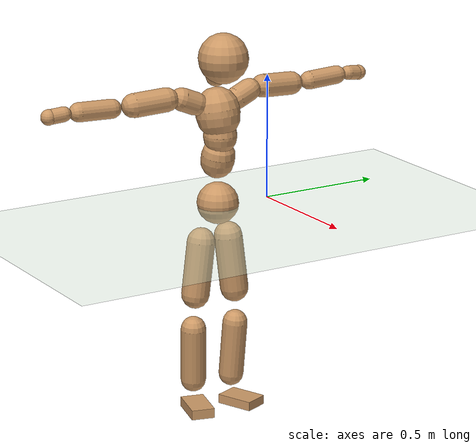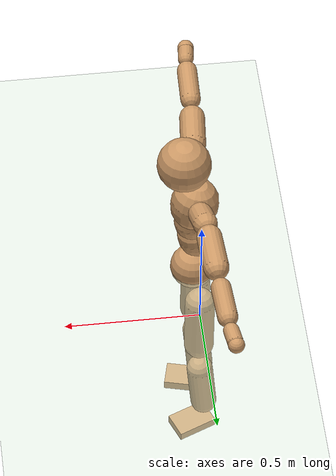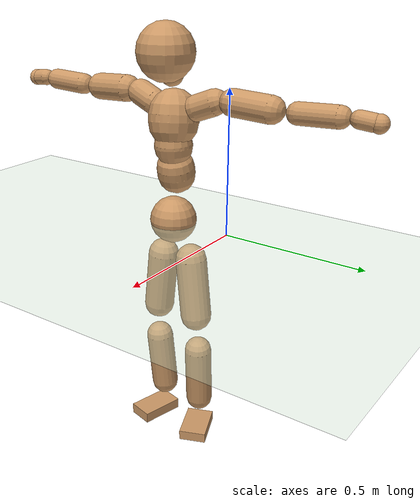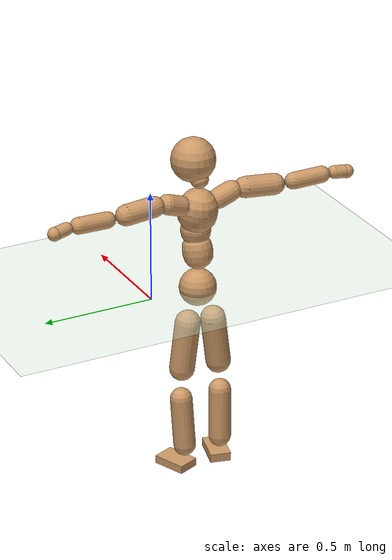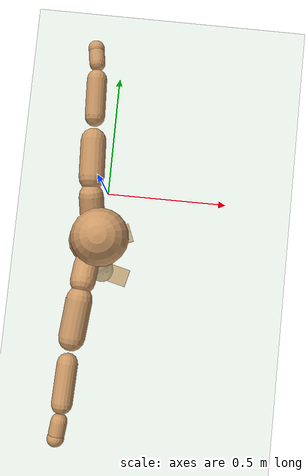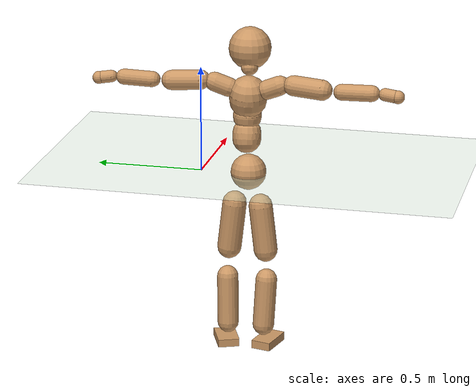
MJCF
<mujoco model="humanoid">
  <compiler coordinate="local" angle="radian"/>
  <default>
    <joint damping="0.0" armature="0.01" stiffness="0.0" limited="true"/>
    <geom conaffinity="1" condim="3" contype="7" margin="0.001" rgba="0.8 0.6 .4 1"/>
  </default>
  <asset>
    <texture type="skybox" builtin="gradient" rgb1=".4 .5 .6" rgb2="0 0 0" width="100" height="100"/>
    <texture builtin="flat" height="1278" mark="cross" markrgb="1 1 1" name="texgeom" random="0.01" rgb1="0.8 0.6 0.4" rgb2="0.8 0.6 0.4" type="cube" width="127"/>
    <texture builtin="checker" height="100" name="texplane" rgb1="0 0 0" rgb2="0.8 0.8 0.8" type="2d" width="100"/>
    <material name="MatPlane" reflectance="0.5" shininess="1" specular="1" texrepeat="60 60" texture="texplane"/>
    <material name="geom" texture="texgeom" texuniform="true"/>
  </asset>
  <worldbody>
    <light cutoff="100" diffuse="1 1 1" dir="-0 0 -1.3" directional="true" exponent="1" pos="0 0 1.3" specular=".1 .1 .1"/>
    <geom conaffinity="1" condim="3" name="floor" pos="0 0 0" rgba="0.8 0.9 0.8 1" size="100 100 .2" type="plane" material="MatPlane"/>
    <body name="Pelvis" pos="-0.001 -0.2264 0.0105">
      <freejoint name="Pelvis"/>
      <geom type="sphere" contype="1" conaffinity="1" density="500" size="0.0836" pos="0.0000 0.0000 0.0000" name="Pelvis"/>
      <body name="L_Hip" pos="-0.0244 0.0524 -0.0767">
        <joint name="L_Hip_x" type="hinge" pos="0 0 0" axis="1 0 0" stiffness="800" damping="80" armature="0.02" range="-180.0000 180.0000"/>
        <joint name="L_Hip_y" type="hinge" pos="0 0 0" axis="0 1 0" stiffness="800" damping="80" armature="0.02" range="-180.0000 180.0000"/>
        <joint name="L_Hip_z" type="hinge" pos="0 0 0" axis="0 0 1" stiffness="800" damping="80" armature="0.02" range="-180.0000 180.0000"/>
        <geom type="capsule" contype="1" conaffinity="1" density="500" fromto="0.0014 0.0089 -0.0738 0.0057 0.0354 -0.2952" size="0.0569" name="L_Hip"/>
        <body name="L_Knee" pos="0.0072 0.0443 -0.3691">
          <joint name="L_Knee_x" type="hinge" pos="0 0 0" axis="1 0 0" stiffness="800" damping="80" armature="0.02" range="-180.0000 180.0000"/>
          <joint name="L_Knee_y" type="hinge" pos="0 0 0" axis="0 1 0" stiffness="800" damping="80" armature="0.02" range="-180.0000 180.0000"/>
          <joint name="L_Knee_z" type="hinge" pos="0 0 0" axis="0 0 1" stiffness="800" damping="80" armature="0.02" range="-180.0000 180.0000"/>
          <geom type="capsule" contype="1" conaffinity="1" density="500" fromto="-0.0066 -0.0021 -0.0752 -0.0264 -0.0085 -0.3008" size="0.0501" name="L_Knee"/>
          <body name="L_Ankle" pos="-0.033 -0.0106 -0.376">
            <joint name="L_Ankle_x" type="hinge" pos="0 0 0" axis="1 0 0" stiffness="800" damping="80" armature="0.02" range="-180.0000 180.0000"/>
            <joint name="L_Ankle_y" type="hinge" pos="0 0 0" axis="0 1 0" stiffness="800" damping="80" armature="0.02" range="-180.0000 180.0000"/>
            <joint name="L_Ankle_z" type="hinge" pos="0 0 0" axis="0 0 1" stiffness="800" damping="80" armature="0.02" range="-180.0000 180.0000"/>
            <geom type="box" contype="1" conaffinity="1" density="500" pos="0.0540 0.0222 -0.0274" size="0.0767 0.0503 0.0185" quat="0.9810 0.0000 0.0000 0.1939" name="L_Ankle"/>
            <body name="L_Toe" pos="0.108 0.0444 -0.0548">
              <joint name="L_Toe_x" type="hinge" pos="0 0 0" axis="1 0 0" stiffness="500" damping="50" armature="0.02" range="-180.0000 180.0000"/>
              <joint name="L_Toe_y" type="hinge" pos="0 0 0" axis="0 1 0" stiffness="500" damping="50" armature="0.02" range="-180.0000 180.0000"/>
              <joint name="L_Toe_z" type="hinge" pos="0 0 0" axis="0 0 1" stiffness="500" damping="50" armature="0.02" range="-180.0000 180.0000"/>
              <geom type="box" contype="1" conaffinity="1" density="500" pos="0.0000 0.0000 0.0286" size="0.001 0.0024 0.001" quat="0.9801 0.0000 0.0000 0.1984" name="L_Toe"/>
            </body>
          </body>
        </body>
      </body>
      <body name="R_Hip" pos="-0.0217 -0.0549 -0.0837">
        <joint name="R_Hip_x" type="hinge" pos="0 0 0" axis="1 0 0" stiffness="800" damping="80" armature="0.02" range="-180.0000 180.0000"/>
        <joint name="R_Hip_y" type="hinge" pos="0 0 0" axis="0 1 0" stiffness="800" damping="80" armature="0.02" range="-180.0000 180.0000"/>
        <joint name="R_Hip_z" type="hinge" pos="0 0 0" axis="0 0 1" stiffness="800" damping="80" armature="0.02" range="-180.0000 180.0000"/>
        <geom type="capsule" contype="1" conaffinity="1" density="500" fromto="-0.0008 -0.0086 -0.0722 -0.0032 -0.0343 -0.2890" size="0.0561" name="R_Hip"/>
        <body name="R_Knee" pos="-0.004 -0.0429 -0.3612">
          <joint name="R_Knee_x" type="hinge" pos="0 0 0" axis="1 0 0" stiffness="800" damping="80" armature="0.02" range="-180.0000 180.0000"/>
          <joint name="R_Knee_y" type="hinge" pos="0 0 0" axis="0 1 0" stiffness="800" damping="80" armature="0.02" range="-180.0000 180.0000"/>
          <joint name="R_Knee_z" type="hinge" pos="0 0 0" axis="0 0 1" stiffness="800" damping="80" armature="0.02" range="-180.0000 180.0000"/>
          <geom type="capsule" contype="1" conaffinity="1" density="500" fromto="-0.0061 0.0031 -0.0739 -0.0246 0.0124 -0.2956" size="0.0508" name="R_Knee"/>
          <body name="R_Ankle" pos="-0.0307 0.0155 -0.3695">
            <joint name="R_Ankle_x" type="hinge" pos="0 0 0" axis="1 0 0" stiffness="800" damping="80" armature="0.02" range="-180.0000 180.0000"/>
            <joint name="R_Ankle_y" type="hinge" pos="0 0 0" axis="0 1 0" stiffness="800" damping="80" armature="0.02" range="-180.0000 180.0000"/>
            <joint name="R_Ankle_z" type="hinge" pos="0 0 0" axis="0 0 1" stiffness="800" damping="80" armature="0.02" range="-180.0000 180.0000"/>
            <geom type="box" contype="1" conaffinity="1" density="500" pos="0.0580 -0.0143 -0.0286" size="0.0813 0.0469 0.0198" quat="0.9927 0.0000 0.0000 -0.1208" name="R_Ankle"/>
            <body name="R_Toe" pos="0.1159 -0.0286 -0.0573">
              <joint name="R_Toe_x" type="hinge" pos="0 0 0" axis="1 0 0" stiffness="500" damping="50" armature="0.02" range="-180.0000 180.0000"/>
              <joint name="R_Toe_y" type="hinge" pos="0 0 0" axis="0 1 0" stiffness="500" damping="50" armature="0.02" range="-180.0000 180.0000"/>
              <joint name="R_Toe_z" type="hinge" pos="0 0 0" axis="0 0 1" stiffness="500" damping="50" armature="0.02" range="-180.0000 180.0000"/>
              <geom type="box" contype="1" conaffinity="1" density="500" pos="0.0000 0.0000 0.0306" size="0.0009 0.0023 0.0011" quat="0.9938 0.0000 0.0000 -0.1109" name="R_Toe"/>
            </body>
          </body>
        </body>
      </body>
      <body name="Torso" pos="-0.0244 0.0038 0.1117">
        <joint name="Torso_x" type="hinge" pos="0 0 0" axis="1 0 0" stiffness="1000" damping="100" armature="0.02" range="-180.0000 180.0000"/>
        <joint name="Torso_y" type="hinge" pos="0 0 0" axis="0 1 0" stiffness="1000" damping="100" armature="0.02" range="-180.0000 180.0000"/>
        <joint name="Torso_z" type="hinge" pos="0 0 0" axis="0 0 1" stiffness="1000" damping="100" armature="0.02" range="-180.0000 180.0000"/>
        <geom type="capsule" contype="1" conaffinity="1" density="500" fromto="0.0180 0.0025 0.0807 0.0120 0.0017 0.0538" size="0.0669" name="Torso"/>
        <body name="Spine" pos="0.0301 0.0042 0.1345">
          <joint name="Spine_x" type="hinge" pos="0 0 0" axis="1 0 0" stiffness="1000" damping="100" armature="0.02" range="-180.0000 180.0000"/>
          <joint name="Spine_y" type="hinge" pos="0 0 0" axis="0 1 0" stiffness="1000" damping="100" armature="0.02" range="-180.0000 180.0000"/>
          <joint name="Spine_z" type="hinge" pos="0 0 0" axis="0 0 1" stiffness="1000" damping="100" armature="0.02" range="-180.0000 180.0000"/>
          <geom type="capsule" contype="1" conaffinity="1" density="500" fromto="0.0010 -0.0010 0.0323 0.0006 -0.0007 0.0215" size="0.0666" name="Spine"/>
          <body name="Chest" pos="0.0016 -0.0017 0.0538">
            <joint name="Chest_x" type="hinge" pos="0 0 0" axis="1 0 0" stiffness="1000" damping="100" armature="0.02" range="-180.0000 180.0000"/>
            <joint name="Chest_y" type="hinge" pos="0 0 0" axis="0 1 0" stiffness="1000" damping="100" armature="0.02" range="-180.0000 180.0000"/>
            <joint name="Chest_z" type="hinge" pos="0 0 0" axis="0 0 1" stiffness="1000" damping="100" armature="0.02" range="-180.0000 180.0000"/>
            <geom type="capsule" contype="1" conaffinity="1" density="500" fromto="-0.0118 -0.0054 0.0784 -0.0078 -0.0036 0.0523" size="0.0879" name="Chest"/>
            <body name="Neck" pos="-0.0218 -0.0134 0.1917">
              <joint name="Neck_x" type="hinge" pos="0 0 0" axis="1 0 0" stiffness="500" damping="50" armature="0.02" range="-180.0000 180.0000"/>
              <joint name="Neck_y" type="hinge" pos="0 0 0" axis="0 1 0" stiffness="500" damping="50" armature="0.02" range="-180.0000 180.0000"/>
              <joint name="Neck_z" type="hinge" pos="0 0 0" axis="0 0 1" stiffness="500" damping="50" armature="0.02" range="-180.0000 180.0000"/>
              <geom type="capsule" contype="1" conaffinity="1" density="500" fromto="0.0106 0.0019 0.0192 0.0424 0.0075 0.0768" size="0.041" name="Neck"/>
              <body name="Head" pos="0.053 0.0094 0.0961">
                <joint name="Head_x" type="hinge" pos="0 0 0" axis="1 0 0" stiffness="500" damping="50" armature="0.02" range="-180.0000 180.0000"/>
                <joint name="Head_y" type="hinge" pos="0 0 0" axis="0 1 0" stiffness="500" damping="50" armature="0.02" range="-180.0000 180.0000"/>
                <joint name="Head_z" type="hinge" pos="0 0 0" axis="0 0 1" stiffness="500" damping="50" armature="0.02" range="-180.0000 180.0000"/>
                <geom type="sphere" contype="1" conaffinity="1" density="500" size="0.0990" pos="0.0000 0.0000 0.0000" name="Head"/>
              </body>
            </body>
            <body name="L_Thorax" pos="-0.0163 0.0626 0.1002">
              <joint name="L_Thorax_x" type="hinge" pos="0 0 0" axis="1 0 0" stiffness="500" damping="50" armature="0.02" range="-180.0000 180.0000"/>
              <joint name="L_Thorax_y" type="hinge" pos="0 0 0" axis="0 1 0" stiffness="500" damping="50" armature="0.02" range="-180.0000 180.0000"/>
              <joint name="L_Thorax_z" type="hinge" pos="0 0 0" axis="0 0 1" stiffness="500" damping="50" armature="0.02" range="-180.0000 180.0000"/>
              <geom type="capsule" contype="1" conaffinity="1" density="500" fromto="-0.0029 0.0217 0.0082 -0.0118 0.0870 0.0329" size="0.0451" name="L_Thorax"/>
              <body name="L_Shoulder" pos="-0.0147 0.1087 0.0412">
                <joint name="L_Shoulder_x" type="hinge" pos="0 0 0" axis="1 0 0" stiffness="500" damping="50" armature="0.02" range="-720.0000 720.0000"/>
                <joint name="L_Shoulder_y" type="hinge" pos="0 0 0" axis="0 1 0" stiffness="500" damping="50" armature="0.02" range="-720.0000 720.0000"/>
                <joint name="L_Shoulder_z" type="hinge" pos="0 0 0" axis="0 0 1" stiffness="500" damping="50" armature="0.02" range="-720.0000 720.0000"/>
                <geom type="capsule" contype="1" conaffinity="1" density="500" fromto="-0.0027 0.0451 -0.0026 -0.0106 0.1803 -0.0103" size="0.0465" name="L_Shoulder"/>
                <body name="L_Elbow" pos="-0.0133 0.2254 -0.0129">
                  <joint name="L_Elbow_x" type="hinge" pos="0 0 0" axis="1 0 0" stiffness="500" damping="50" armature="0.02" range="-720.0000 720.0000"/>
                  <joint name="L_Elbow_y" type="hinge" pos="0 0 0" axis="0 1 0" stiffness="500" damping="50" armature="0.02" range="-720.0000 720.0000"/>
                  <joint name="L_Elbow_z" type="hinge" pos="0 0 0" axis="0 0 1" stiffness="500" damping="50" armature="0.02" range="-720.0000 720.0000"/>
                  <geom type="capsule" contype="1" conaffinity="1" density="500" fromto="-0.0020 0.0449 0.0016 -0.0081 0.1798 0.0065" size="0.0368" name="L_Elbow"/>
                  <body name="L_Wrist" pos="-0.0102 0.2247 0.0081">
                    <joint name="L_Wrist_x" type="hinge" pos="0 0 0" axis="1 0 0" stiffness="300" damping="30" armature="0.02" range="-180.0000 180.0000"/>
                    <joint name="L_Wrist_y" type="hinge" pos="0 0 0" axis="0 1 0" stiffness="300" damping="30" armature="0.02" range="-180.0000 180.0000"/>
                    <joint name="L_Wrist_z" type="hinge" pos="0 0 0" axis="0 0 1" stiffness="300" damping="30" armature="0.02" range="-180.0000 180.0000"/>
                    <geom type="capsule" contype="1" conaffinity="1" density="500" fromto="-0.0026 0.0145 -0.0018 -0.0103 0.0580 -0.0074" size="0.0288" name="L_Wrist"/>
                    <body name="L_Hand" pos="-0.0128 0.0725 -0.0092">
                      <joint name="L_Hand_x" type="hinge" pos="0 0 0" axis="1 0 0" stiffness="300" damping="30" armature="0.02" range="-180.0000 180.0000"/>
                      <joint name="L_Hand_y" type="hinge" pos="0 0 0" axis="0 1 0" stiffness="300" damping="30" armature="0.02" range="-180.0000 180.0000"/>
                      <joint name="L_Hand_z" type="hinge" pos="0 0 0" axis="0 0 1" stiffness="300" damping="30" armature="0.02" range="-180.0000 180.0000"/>
                      <geom type="sphere" contype="1" conaffinity="1" density="500" size="0.0300" pos="0.0000 0.0000 0.0000" name="L_Hand"/>
                    </body>
                  </body>
                </body>
              </body>
            </body>
            <body name="R_Thorax" pos="-0.0207 -0.0761 0.1003">
              <joint name="R_Thorax_x" type="hinge" pos="0 0 0" axis="1 0 0" stiffness="500" damping="50" armature="0.02" range="-180.0000 180.0000"/>
              <joint name="R_Thorax_y" type="hinge" pos="0 0 0" axis="0 1 0" stiffness="500" damping="50" armature="0.02" range="-180.0000 180.0000"/>
              <joint name="R_Thorax_z" type="hinge" pos="0 0 0" axis="0 0 1" stiffness="500" damping="50" armature="0.02" range="-180.0000 180.0000"/>
              <geom type="capsule" contype="1" conaffinity="1" density="500" fromto="-0.0012 -0.0203 0.0084 -0.0047 -0.0810 0.0336" size="0.0458" name="R_Thorax"/>
              <body name="R_Shoulder" pos="-0.0058 -0.1013 0.042">
                <joint name="R_Shoulder_x" type="hinge" pos="0 0 0" axis="1 0 0" stiffness="500" damping="50" armature="0.02" range="-720.0000 720.0000"/>
                <joint name="R_Shoulder_y" type="hinge" pos="0 0 0" axis="0 1 0" stiffness="500" damping="50" armature="0.02" range="-720.0000 720.0000"/>
                <joint name="R_Shoulder_z" type="hinge" pos="0 0 0" axis="0 0 1" stiffness="500" damping="50" armature="0.02" range="-720.0000 720.0000"/>
                <geom type="capsule" contype="1" conaffinity="1" density="500" fromto="-0.0043 -0.0452 -0.0027 -0.0171 -0.1810 -0.0109" size="0.0478" name="R_Shoulder"/>
                <body name="R_Elbow" pos="-0.0214 -0.2262 -0.0136">
                  <joint name="R_Elbow_x" type="hinge" pos="0 0 0" axis="1 0 0" stiffness="500" damping="50" armature="0.02" range="-720.0000 720.0000"/>
                  <joint name="R_Elbow_y" type="hinge" pos="0 0 0" axis="0 1 0" stiffness="500" damping="50" armature="0.02" range="-720.0000 720.0000"/>
                  <joint name="R_Elbow_z" type="hinge" pos="0 0 0" axis="0 0 1" stiffness="500" damping="50" armature="0.02" range="-720.0000 720.0000"/>
                  <geom type="capsule" contype="1" conaffinity="1" density="500" fromto="-0.0013 -0.0466 0.0013 -0.0052 -0.1863 0.0052" size="0.0378" name="R_Elbow"/>
                  <body name="R_Wrist" pos="-0.0065 -0.2329 0.0065">
                    <joint name="R_Wrist_x" type="hinge" pos="0 0 0" axis="1 0 0" stiffness="300" damping="30" armature="0.02" range="-180.0000 180.0000"/>
                    <joint name="R_Wrist_y" type="hinge" pos="0 0 0" axis="0 1 0" stiffness="300" damping="30" armature="0.02" range="-180.0000 180.0000"/>
                    <joint name="R_Wrist_z" type="hinge" pos="0 0 0" axis="0 0 1" stiffness="300" damping="30" armature="0.02" range="-180.0000 180.0000"/>
                    <geom type="capsule" contype="1" conaffinity="1" density="500" fromto="-0.0017 -0.0150 -0.0014 -0.0068 -0.0601 -0.0057" size="0.0296" name="R_Wrist"/>
                    <body name="R_Hand" pos="-0.0085 -0.0751 -0.0071">
                      <joint name="R_Hand_x" type="hinge" pos="0 0 0" axis="1 0 0" stiffness="300" damping="30" armature="0.02" range="-180.0000 180.0000"/>
                      <joint name="R_Hand_y" type="hinge" pos="0 0 0" axis="0 1 0" stiffness="300" damping="30" armature="0.02" range="-180.0000 180.0000"/>
                      <joint name="R_Hand_z" type="hinge" pos="0 0 0" axis="0 0 1" stiffness="300" damping="30" armature="0.02" range="-180.0000 180.0000"/>
                      <geom type="sphere" contype="1" conaffinity="1" density="500" size="0.0307" pos="0.0000 0.0000 0.0000" name="R_Hand"/>
                    </body>
                  </body>
                </body>
              </body>
            </body>
          </body>
        </body>
      </body>
    </body>
  </worldbody>
  <actuator>
    <motor name="L_Hip_x" joint="L_Hip_x" gear="500"/>
    <motor name="L_Hip_y" joint="L_Hip_y" gear="500"/>
    <motor name="L_Hip_z" joint="L_Hip_z" gear="500"/>
    <motor name="L_Knee_x" joint="L_Knee_x" gear="500"/>
    <motor name="L_Knee_y" joint="L_Knee_y" gear="500"/>
    <motor name="L_Knee_z" joint="L_Knee_z" gear="500"/>
    <motor name="L_Ankle_x" joint="L_Ankle_x" gear="500"/>
    <motor name="L_Ankle_y" joint="L_Ankle_y" gear="500"/>
    <motor name="L_Ankle_z" joint="L_Ankle_z" gear="500"/>
    <motor name="L_Toe_x" joint="L_Toe_x" gear="500"/>
    <motor name="L_Toe_y" joint="L_Toe_y" gear="500"/>
    <motor name="L_Toe_z" joint="L_Toe_z" gear="500"/>
    <motor name="R_Hip_x" joint="R_Hip_x" gear="500"/>
    <motor name="R_Hip_y" joint="R_Hip_y" gear="500"/>
    <motor name="R_Hip_z" joint="R_Hip_z" gear="500"/>
    <motor name="R_Knee_x" joint="R_Knee_x" gear="500"/>
    <motor name="R_Knee_y" joint="R_Knee_y" gear="500"/>
    <motor name="R_Knee_z" joint="R_Knee_z" gear="500"/>
    <motor name="R_Ankle_x" joint="R_Ankle_x" gear="500"/>
    <motor name="R_Ankle_y" joint="R_Ankle_y" gear="500"/>
    <motor name="R_Ankle_z" joint="R_Ankle_z" gear="500"/>
    <motor name="R_Toe_x" joint="R_Toe_x" gear="500"/>
    <motor name="R_Toe_y" joint="R_Toe_y" gear="500"/>
    <motor name="R_Toe_z" joint="R_Toe_z" gear="500"/>
    <motor name="Torso_x" joint="Torso_x" gear="500"/>
    <motor name="Torso_y" joint="Torso_y" gear="500"/>
    <motor name="Torso_z" joint="Torso_z" gear="500"/>
    <motor name="Spine_x" joint="Spine_x" gear="500"/>
    <motor name="Spine_y" joint="Spine_y" gear="500"/>
    <motor name="Spine_z" joint="Spine_z" gear="500"/>
    <motor name="Chest_x" joint="Chest_x" gear="500"/>
    <motor name="Chest_y" joint="Chest_y" gear="500"/>
    <motor name="Chest_z" joint="Chest_z" gear="500"/>
    <motor name="Neck_x" joint="Neck_x" gear="500"/>
    <motor name="Neck_y" joint="Neck_y" gear="500"/>
    <motor name="Neck_z" joint="Neck_z" gear="500"/>
    <motor name="Head_x" joint="Head_x" gear="500"/>
    <motor name="Head_y" joint="Head_y" gear="500"/>
    <motor name="Head_z" joint="Head_z" gear="500"/>
    <motor name="L_Thorax_x" joint="L_Thorax_x" gear="500"/>
    <motor name="L_Thorax_y" joint="L_Thorax_y" gear="500"/>
    <motor name="L_Thorax_z" joint="L_Thorax_z" gear="500"/>
    <motor name="L_Shoulder_x" joint="L_Shoulder_x" gear="500"/>
    <motor name="L_Shoulder_y" joint="L_Shoulder_y" gear="500"/>
    <motor name="L_Shoulder_z" joint="L_Shoulder_z" gear="500"/>
    <motor name="L_Elbow_x" joint="L_Elbow_x" gear="500"/>
    <motor name="L_Elbow_y" joint="L_Elbow_y" gear="500"/>
    <motor name="L_Elbow_z" joint="L_Elbow_z" gear="500"/>
    <motor name="L_Wrist_x" joint="L_Wrist_x" gear="500"/>
    <motor name="L_Wrist_y" joint="L_Wrist_y" gear="500"/>
    <motor name="L_Wrist_z" joint="L_Wrist_z" gear="500"/>
    <motor name="L_Hand_x" joint="L_Hand_x" gear="500"/>
    <motor name="L_Hand_y" joint="L_Hand_y" gear="500"/>
    <motor name="L_Hand_z" joint="L_Hand_z" gear="500"/>
    <motor name="R_Thorax_x" joint="R_Thorax_x" gear="500"/>
    <motor name="R_Thorax_y" joint="R_Thorax_y" gear="500"/>
    <motor name="R_Thorax_z" joint="R_Thorax_z" gear="500"/>
    <motor name="R_Shoulder_x" joint="R_Shoulder_x" gear="500"/>
    <motor name="R_Shoulder_y" joint="R_Shoulder_y" gear="500"/>
    <motor name="R_Shoulder_z" joint="R_Shoulder_z" gear="500"/>
    <motor name="R_Elbow_x" joint="R_Elbow_x" gear="500"/>
    <motor name="R_Elbow_y" joint="R_Elbow_y" gear="500"/>
    <motor name="R_Elbow_z" joint="R_Elbow_z" gear="500"/>
    <motor name="R_Wrist_x" joint="R_Wrist_x" gear="500"/>
    <motor name="R_Wrist_y" joint="R_Wrist_y" gear="500"/>
    <motor name="R_Wrist_z" joint="R_Wrist_z" gear="500"/>
    <motor name="R_Hand_x" joint="R_Hand_x" gear="500"/>
    <motor name="R_Hand_y" joint="R_Hand_y" gear="500"/>
    <motor name="R_Hand_z" joint="R_Hand_z" gear="500"/>
  </actuator>
  <contact>
    <exclude body1="Torso" body2="Chest"/>
    <exclude body1="Head" body2="Chest"/>
    <exclude body1="R_Knee" body2="R_Toe"/>
    <exclude body1="R_Knee" body2="L_Ankle"/>
    <exclude body1="R_Knee" body2="L_Toe"/>
    <exclude body1="L_Knee" body2="L_Toe"/>
    <exclude body1="L_Knee" body2="R_Ankle"/>
    <exclude body1="L_Knee" body2="R_Toe"/>
    <exclude body1="L_Shoulder" body2="Chest"/>
    <exclude body1="R_Shoulder" body2="Chest"/>
  </contact>
  <sensor/>
  <size njmax="700" nconmax="700"/>
</mujoco>
